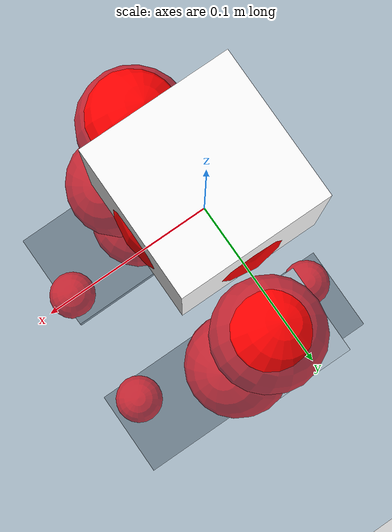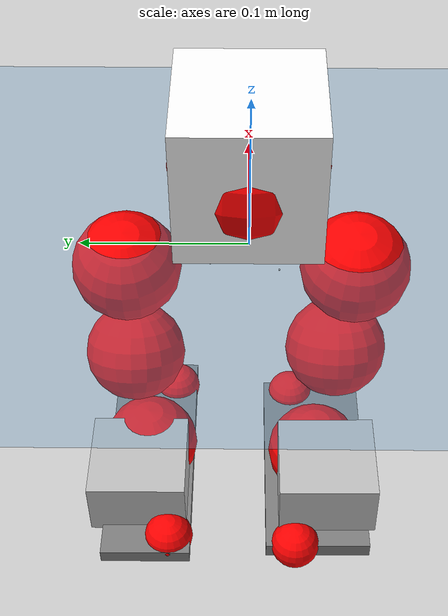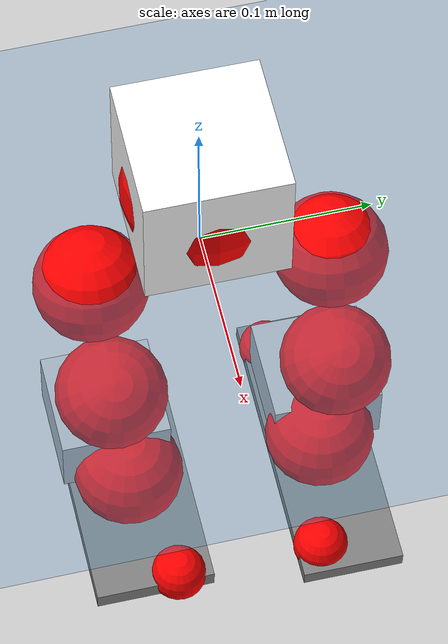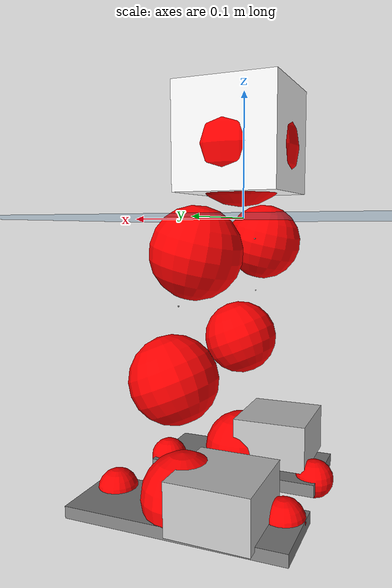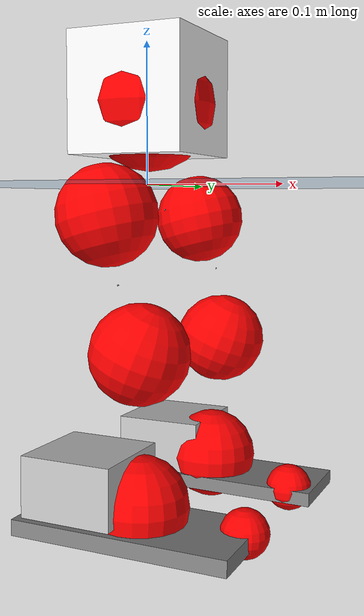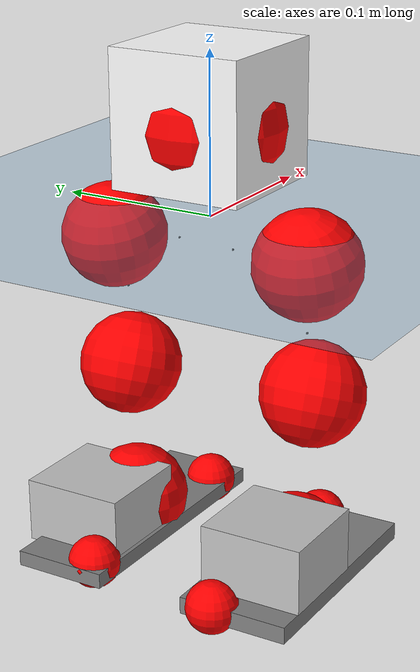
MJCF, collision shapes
<mujoco model="pi_12dof_release_v1">
  <compiler angle="radian" assetdir="assets" balanceinertia="true" inertiafromgeom="false"/>

  <option timestep="0.005" density="1.2" viscosity="2e-05"/>

  <size nkey="1"/>

  <visual>
    <quality shadowsize="8192"/>
    <map shadowclip="0.5"/>
  </visual>

  <default>
    <default class="/">
      <joint armature="0.01" damping="0.01" frictionloss="0.01"/>
      <geom contype="0" conaffinity="0" group="1" solref="-1000 -80"/>
      <site size="0.01 0.005 0.005" group="5"/>
      <general forcelimited="true" biastype="affine" gainprm="20" biasprm="0 -20 -0.5"/>
      <default class="foot">
        <geom size="0.0845 0.036 0.005" type="box" condim="6" group="4" priority="1" friction="0.9 0.2 0.2" solimp="0.015 1 0.005"/>
      </default>
      <default class="reward_collision_sphere">
        <geom group="5" rgba="1 0 0 1"/>
      </default>
    </default>
  </default>

  <asset>
    <texture type="skybox" colorspace="auto" name="//unnamed_texture_0" builtin="gradient" rgb1="0.95 0.95 0.95" rgb2="0.95 0.95 0.95" width="100" height="600"/>
    <texture type="2d" colorspace="auto" name="texplane" builtin="checker" rgb1="0.345 0.575 0.748" rgb2="0.345 0.575 0.748" markrgb="1 1 1" width="512" height="512"/>
    <material name="MatPlane" class="/" texture="texplane" texuniform="true" texrepeat="2 2" specular="0.9"/>
    <mesh name="baselink_1" class="/" file="baselink_1.STL"/>
    <mesh name="r_hip_pitch_link" class="/" file="r_hip_pitch_link.STL"/>
    <mesh name="r_hip_roll_link" class="/" file="r_hip_roll_link.STL"/>
    <mesh name="r_thigh_link" class="/" file="r_thigh_link.STL"/>
    <mesh name="r_calf_link" class="/" file="r_calf_link.STL"/>
    <mesh name="r_ankle_pitch_link" class="/" file="r_ankle_pitch_link.STL"/>
    <mesh name="r_ankle_roll_link" class="/" file="r_ankle_roll_link.STL"/>
    <mesh name="l_hip_pitch_link" class="/" file="l_hip_pitch_link.STL"/>
    <mesh name="l_hip_roll_link" class="/" file="l_hip_roll_link.STL"/>
    <mesh name="l_thigh_link" class="/" file="l_thigh_link.STL"/>
    <mesh name="l_calf_link" class="/" file="l_calf_link.STL"/>
    <mesh name="l_ankle_pitch_link" class="/" file="l_ankle_pitch_link.STL"/>
    <mesh name="l_ankle_roll_link" class="/" file="l_ankle_roll_link.STL"/>
  </asset>

  <worldbody>
    <geom name="floor" class="/" size="100 100 0.125" type="plane" group="0" material="MatPlane"/>
    <light name="toplight_shadow" class="/" pos="0 0 5" dir="0.0990148 0.0990148 -0.990148" type="directional" ambient="0.04 0.04 0.04" diffuse="0.55 0.55 0.55" specular="0.12 0.12 0.12"/>
    <light name="toplight_fill" class="/" pos="0 0 5" dir="0.0990148 0.0990148 -0.990148" type="directional" castshadow="false" ambient="0.04 0.04 0.04" diffuse="0.3 0.3 0.3" specular="0.08 0.08 0.08"/>
    <body name="trunk" pos="0.00182921 0.000590217 0.00891486" quat="0.999992 -0.00350688 -0.000110645 -0.0018334">
      <inertial pos="0.00605828 -0.00646352 0.0286759" quat="0.709649 0.00165512 -0.0213518 0.70423" mass="1.18959" diaginertia="0.0112297 0.00240328 0.000490112"/>
      <joint name="//unnamed_joint_0" type="free"/>
      <geom name="//unnamed_geom_1" class="/" type="mesh" density="0" rgba="1 1 1 1" mesh="baselink_1"/>
      <geom name="//unnamed_geom_2" class="/" size="0.0419198 0.0419198 0.0419198" pos="0 0 0.0532523" type="box" rgba="1 1 1 1"/>
      <geom name="//unnamed_geom_3" class="reward_collision_sphere" size="0.0461118" pos="0 0 0.0465958"/>
      <site name="imu" class="/" pos="0.00626811 -0.0159593 0.0278786" size="0.00838396"/>
      <camera name="track" class="/" pos="0 -1.5797 0" quat="0.707107 0.707107 0 0" mode="trackcom"/>
      <camera name="ego_camera" class="/" pos="0.0794766 0 0.119818" quat="-0.5 -0.5 0.5 0.5"/>
      <body name="r_hip_pitch_link" pos="-0.00578398 -0.0184655 -0.0255602" quat="0.992198 1.42409e-06 -0.124671 1.96338e-06">
        <inertial pos="0.0084147 -0.0470343 0.0084039" quat="-0.0489373 0.683162 -0.0234198 0.728249" mass="0.228091" diaginertia="0.000141164 3.12185e-05 1.1299e-05"/>
        <joint name="r_hip_pitch_joint" class="/" pos="0 0 0" axis="0.0054612 -0.999976 -0.00427932" stiffness="0.0114519" range="-1.71657 1.23772" armature="0.00840272" damping="0.0321921" frictionloss="0.00902547"/>
        <geom name="//unnamed_geom_4" class="/" type="mesh" density="0" rgba="0.75294 0.75294 0.75294 1" mesh="r_hip_pitch_link"/>
        <geom name="//unnamed_geom_5" class="/" size="0.000419198 0.000419198 0.000419198" type="box" rgba="0.75294 0.75294 0.75294 1"/>
        <body name="r_hip_roll_link" pos="0.00596913 -0.046132 -0.00564257" quat="0.999999 -0.000351084 0.00115234 0.000403437">
          <inertial pos="0.00442034 -0.000515316 -0.0452849" quat="0.705666 -0.0794131 -0.0832191 0.699145" mass="0.251071" diaginertia="0.00049146 9.31577e-05 1.95728e-05"/>
          <joint name="r_hip_roll_joint" class="/" pos="0 0 0" axis="-0.999699 -0.00389046 0.0242093" stiffness="0.00668674" range="-0.120091 0.467529" armature="0.0124341" damping="0.0128746" frictionloss="0.00693092"/>
          <geom name="//unnamed_geom_6" class="/" type="mesh" density="0" rgba="0.75294 0.75294 0.75294 1" mesh="r_hip_roll_link"/>
          <geom name="//unnamed_geom_7" class="/" size="0.000419198 0.000419198 0.000419198" type="box" rgba="0.75294 0.75294 0.75294 1"/>
          <geom name="//unnamed_geom_8" class="reward_collision_sphere" size="0.0335359"/>
          <body name="r_thigh_link" pos="-0.00502106 0.0028899 -0.0451415" quat="0.999999 -0.000923776 -0.00038728 -0.000683218">
            <inertial pos="0.0102866 0.00921667 -0.0347029" quat="0.73188 0.681409 -0.00491681 0.00291328" mass="0.0656496" diaginertia="0.000178757 2.91342e-05 7.33257e-06"/>
            <joint name="r_thigh_joint" class="/" pos="0 0 0" axis="0.00322259 0.00101246 -0.999994" range="-0.257236 0.463545" armature="0.011882" damping="0" frictionloss="0.00776699"/>
            <geom name="//unnamed_geom_9" class="/" type="mesh" density="0" rgba="0.75294 0.75294 0.75294 1" mesh="r_thigh_link"/>
            <geom name="//unnamed_geom_10" class="/" size="0.000419198 0.000419198 0.000419198" type="box" rgba="0.75294 0.75294 0.75294 1"/>
            <body name="r_calf_link" pos="0.0025673 0.00308771 -0.0467653" quat="0.946552 -0.00200895 0.322534 0.00246923">
              <inertial pos="0.000462369 -0.000353756 -0.0455121" quat="0.998992 -0.0116464 -0.0420728 -0.0104684" mass="0.425198" diaginertia="0.00479182 0.00105591 2.3326e-05"/>
              <joint name="r_calf_joint" class="/" pos="0 0 0" axis="0.00515361 -0.999987 -0.000221491" stiffness="0.00142122" range="-1.66585 0.596665" armature="0.00825016" damping="0.017798" frictionloss="0.00922662"/>
              <geom name="//unnamed_geom_11" class="/" type="mesh" density="0" rgba="0.75294 0.75294 0.75294 1" mesh="r_calf_link"/>
              <geom name="//unnamed_geom_12" class="/" size="0.000419198 0.000419198 0.000419198" type="box" rgba="0.75294 0.75294 0.75294 1"/>
              <geom name="//unnamed_geom_13" class="reward_collision_sphere" size="0.0335359"/>
              <body name="r_ankle_pitch_link" pos="-0.00106656 0.00389071 -0.0975377" quat="0.980135 0.000520123 -0.198333 0.000388354">
                <inertial pos="0.00682362 0.00305294 0.000105341" quat="0.00283084 0.706462 -0.00284928 0.707739" mass="0.0973639" diaginertia="0.000423768 7.37951e-05 1.5462e-05"/>
                <joint name="r_ankle_pitch_joint" class="/" pos="0 0 0" axis="-0.0125122 -0.999816 -0.0145149" stiffness="0.00115079" range="-1.2432 0.514389" armature="0.00878274" damping="0" frictionloss="0.00904234"/>
                <geom name="//unnamed_geom_14" class="/" type="mesh" density="0" rgba="0.75294 0.75294 0.75294 1" mesh="r_ankle_pitch_link"/>
                <geom name="//unnamed_geom_15" class="/" size="0.0326975 0.0335359 0.0209599" type="box" rgba="0.75294 0.75294 0.75294 1"/>
                <body name="r_ankle_roll_link" pos="0.0881755 0.00636709 -0.00127785" quat="1 -0.000182072 -0.000447471 -0.000185472">
                  <inertial pos="-0.0263454 0.00777428 -0.0156156" quat="0.537165 0.407346 0.438818 0.594105" mass="0.328571" diaginertia="0.00161587 0.000317324 4.24974e-05"/>
                  <joint name="r_ankle_roll_joint" class="/" pos="0 0 0" axis="-0.999912 0.00870233 0.0100565" range="0.045604 0.0875771" armature="0.0113117" damping="0.00734507" frictionloss="0.0117541"/>
                  <geom name="//unnamed_geom_16" class="/" type="mesh" density="0" rgba="0.75294 0.75294 0.75294 1" mesh="r_ankle_roll_link"/>
                  <geom name="//unnamed_geom_17" class="/" type="mesh" rgba="0.75294 0.75294 0.75294 1" mesh="r_ankle_roll_link"/>
                  <geom name="right_foot" class="foot" size="0.0774168 0.0361856 0.00553613" pos="-0.0540441 0 -0.0292888"/>
                  <geom name="//unnamed_geom_19" class="reward_collision_sphere" size="0.0335359" pos="-0.0529844 0 -0.0133131"/>
                  <geom name="//unnamed_geom_20" class="reward_collision_sphere" size="0.0167679" pos="0.0158953 0.015797 -0.0266262"/>
                  <geom name="//unnamed_geom_21" class="reward_collision_sphere" size="0.0167679" pos="-0.127162 0.015797 -0.0266262"/>
                  <site name="right_foot" class="foot" pos="-0.0540441 0 -0.0292888" size="0.00838396"/>
                </body>
              </body>
            </body>
          </body>
        </body>
      </body>
      <body name="l_hip_pitch_link" pos="0.000861126 0.0228369 -0.0264472" quat="0.992182 -1.10833e-05 -0.124796 4.27806e-05">
        <inertial pos="0.000893529 0.050338 0.00873968" quat="-0.0347986 0.703337 0.028519 0.709431" mass="0.232849" diaginertia="0.000182852 3.31028e-05 1.46086e-05"/>
        <joint name="l_hip_pitch_joint" class="/" pos="0 0 0" axis="-0.0289593 0.999435 0.0170457" stiffness="0.0222384" range="-1.07249 1.80284" armature="0.00831929" damping="0.0299229" frictionloss="0.00730363"/>
        <geom name="//unnamed_geom_22" class="/" type="mesh" density="0" rgba="0.75294 0.75294 0.75294 1" mesh="l_hip_pitch_link"/>
        <geom name="//unnamed_geom_23" class="/" size="0.000419198 0.000419198 0.000419198" type="box" rgba="0.75294 0.75294 0.75294 1"/>
        <body name="l_hip_roll_link" pos="0.00378016 0.0514796 -0.00838948" quat="0.999997 -0.000396599 0.00231365 -0.000961863">
          <inertial pos="-0.0116197 0.00511249 -0.0310911" quat="0.699265 -0.0756628 -0.0792144 0.70642" mass="0.195027" diaginertia="0.000350176 7.60963e-05 1.38571e-05"/>
          <joint name="l_hip_roll_joint" class="/" pos="0 0 0" axis="-0.999961 -0.000775866 -0.00874439" stiffness="0.000180353" range="-0.492031 0.178395" armature="0.0101803" damping="0" frictionloss="0.00828305"/>
          <geom name="//unnamed_geom_24" class="/" type="mesh" density="0" rgba="0.75294 0.75294 0.75294 1" mesh="l_hip_roll_link"/>
          <geom name="//unnamed_geom_25" class="/" size="0.000419198 0.000419198 0.000419198" type="box" rgba="0.75294 0.75294 0.75294 1"/>
          <geom name="//unnamed_geom_26" class="reward_collision_sphere" size="0.0335359"/>
          <body name="l_thigh_link" pos="0.00430063 0.000381207 -0.0410065" quat="0.999996 -0.00254769 -0.00026146 0.00117446">
            <inertial pos="0.00868058 -0.0054134 -0.0226349" quat="0.664255 0.746713 -0.00950362 -0.0331028" mass="0.0720659" diaginertia="0.000175988 3.17419e-05 7.87029e-06"/>
            <joint name="l_thigh_joint" class="/" pos="0 0 0" axis="-0.00265696 -0.00466519 -0.999986" range="-0.644079 0.251609" armature="0.00842902" damping="0.000145593" frictionloss="0.0044802"/>
            <geom name="//unnamed_geom_27" class="/" type="mesh" density="0" rgba="0.75294 0.75294 0.75294 1" mesh="l_thigh_link"/>
            <geom name="//unnamed_geom_28" class="/" size="0.000419198 0.000419198 0.000419198" type="box" rgba="0.75294 0.75294 0.75294 1"/>
            <body name="l_calf_link" pos="-0.00992213 0.00195009 -0.0537818" quat="0.94777 0.000616998 0.318955 0.000294695">
              <inertial pos="0.00625749 0.00624103 -0.0515151" quat="0.999113 0.0153613 0.0288981 0.0264871" mass="0.480003" diaginertia="0.0037512 0.000974684 1.96061e-05"/>
              <joint name="l_calf_joint" class="/" pos="0 0 0" axis="-0.0120511 0.999923 -0.00294776" stiffness="0.0294645" range="-0.512666 1.49657" armature="0.00860125" damping="0.0243615" frictionloss="0.00674139"/>
              <geom name="//unnamed_geom_29" class="/" type="mesh" density="0" rgba="0.75294 0.75294 0.75294 1" mesh="l_calf_link"/>
              <geom name="//unnamed_geom_30" class="/" size="0.000419198 0.000419198 0.000419198" type="box" rgba="0.75294 0.75294 0.75294 1"/>
              <geom name="//unnamed_geom_31" class="reward_collision_sphere" size="0.0335359"/>
              <body name="l_ankle_pitch_link" pos="-0.00285076 0.000157009 -0.0932407" quat="0.979905 9.65579e-05 -0.199462 -0.000781779">
                <inertial pos="0.00369671 0.00186025 0.00713752" quat="-0.0151172 0.718039 -0.000288382 0.695838" mass="0.116095" diaginertia="0.000377057 6.73417e-05 1.5828e-05"/>
                <joint name="l_ankle_pitch_joint" class="/" pos="0 0 0" axis="9.41101e-05 0.999993 -0.00363865" range="-0.425982 1.35457" armature="0.00913215" damping="0.053515" frictionloss="0.0107743"/>
                <geom name="//unnamed_geom_32" class="/" type="mesh" density="0" rgba="0.75294 0.75294 0.75294 1" mesh="l_ankle_pitch_link"/>
                <geom name="//unnamed_geom_33" class="/" size="0.0326975 0.0335359 0.0209599" type="box" rgba="0.75294 0.75294 0.75294 1"/>
                <body name="l_ankle_roll_link" pos="0.0877188 -0.00531965 0.00580301" quat="0.999987 9.26429e-05 0.00491864 0.00117789">
                  <inertial pos="-0.0267396 -0.000649501 -0.0119676" quat="0.576397 0.440985 0.401311 0.558791" mass="0.288024" diaginertia="0.00141923 0.000293613 3.8955e-05"/>
                  <joint name="l_ankle_roll_joint" class="/" pos="0 0 0" axis="-0.999998 0.000125204 -0.00179503" range="-0.129246 0.350734" armature="0.00844138" damping="0.0280409" frictionloss="0.00928845"/>
                  <geom name="//unnamed_geom_34" class="/" type="mesh" density="0" rgba="0.75294 0.75294 0.75294 1" mesh="l_ankle_roll_link"/>
                  <geom name="//unnamed_geom_35" class="/" type="mesh" rgba="0.75294 0.75294 0.75294 1" mesh="l_ankle_roll_link"/>
                  <geom name="left_foot" class="foot" size="0.0895837 0.0307635 0.00492232" pos="-0.0540441 0 -0.0292888"/>
                  <geom name="//unnamed_geom_37" class="reward_collision_sphere" size="0.0335359" pos="-0.0529844 0 -0.0133131"/>
                  <geom name="//unnamed_geom_38" class="reward_collision_sphere" size="0.0167679" pos="0.0158953 -0.015797 -0.0266262"/>
                  <geom name="//unnamed_geom_39" class="reward_collision_sphere" size="0.0167679" pos="-0.127162 -0.015797 -0.0266262"/>
                  <site name="left_foot" class="foot" pos="-0.0540441 0 -0.0292888" size="0.00838396"/>
                </body>
              </body>
            </body>
          </body>
        </body>
      </body>
    </body>
  </worldbody>

  <contact>
    <pair class="/" geom1="floor" geom2="right_foot" name="//unnamed_contact_1"/>
    <pair class="/" geom1="floor" geom2="left_foot" name="//unnamed_contact_0"/>
  </contact>

  <actuator>
    <general name="r_hip_pitch_joint" class="/" joint="r_hip_pitch_joint" forcerange="-13.1421 13.1421" gainprm="20.9443" biasprm="0 -20.9443 -0.499255"/>
    <general name="r_hip_roll_joint" class="/" joint="r_hip_roll_joint" forcerange="-23.9054 23.9054" gainprm="20.9443" biasprm="0 -20.9443 -0.499255"/>
    <general name="r_thigh_joint" class="/" joint="r_thigh_joint" forcerange="-17.3198 17.3198" gainprm="20.9443" biasprm="0 -20.9443 -0.499255"/>
    <general name="r_calf_joint" class="/" joint="r_calf_joint" forcerange="-11.0034 11.0034" gainprm="20.9443" biasprm="0 -20.9443 -0.499255"/>
    <general name="r_ankle_pitch_joint" class="/" joint="r_ankle_pitch_joint" forcerange="-18.6145 18.6145" gainprm="20.9443" biasprm="0 -20.9443 -0.499255"/>
    <general name="r_ankle_roll_joint" class="/" joint="r_ankle_roll_joint" forcerange="-23.7999 23.7999" gainprm="20.9443" biasprm="0 -20.9443 -0.499255"/>
    <general name="l_hip_pitch_joint" class="/" joint="l_hip_pitch_joint" forcerange="-17.1784 17.1784" gainprm="20.9443" biasprm="0 -20.9443 -0.499255"/>
    <general name="l_hip_roll_joint" class="/" joint="l_hip_roll_joint" forcerange="-18.4991 18.4991" gainprm="20.9443" biasprm="0 -20.9443 -0.499255"/>
    <general name="l_thigh_joint" class="/" joint="l_thigh_joint" forcerange="-15.6138 15.6138" gainprm="20.9443" biasprm="0 -20.9443 -0.499255"/>
    <general name="l_calf_joint" class="/" joint="l_calf_joint" forcerange="-16.6258 16.6258" gainprm="20.9443" biasprm="0 -20.9443 -0.499255"/>
    <general name="l_ankle_pitch_joint" class="/" joint="l_ankle_pitch_joint" forcerange="-15.7862 15.7862" gainprm="20.9443" biasprm="0 -20.9443 -0.499255"/>
    <general name="l_ankle_roll_joint" class="/" joint="l_ankle_roll_joint" forcerange="-16.7926 16.7926" gainprm="20.9443" biasprm="0 -20.9443 -0.499255"/>
  </actuator>

  <sensor>
    <gyro site="imu" name="imu_angular_velocity"/>
    <velocimeter site="imu" name="imu_linear_velocity"/>
    <framelinvel objtype="site" objname="left_foot" name="left_foot_global_linear_velocity"/>
    <framelinvel objtype="site" objname="right_foot" name="right_foot_global_linear_velocity"/>
  </sensor>

  <keyframe>
    <key name="home" qpos="0 0 0.291 1 0 0 0 0.4 0 0 -0.8 0.4 0 -0.4 0 0 0.8 -0.4 0"/>
  </keyframe>
</mujoco>
